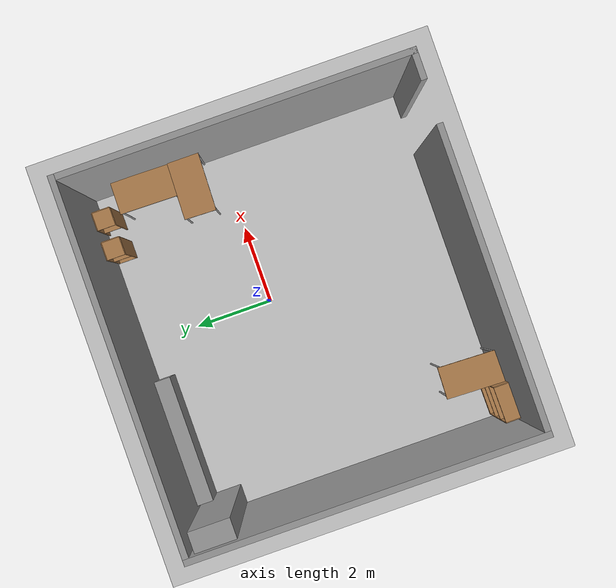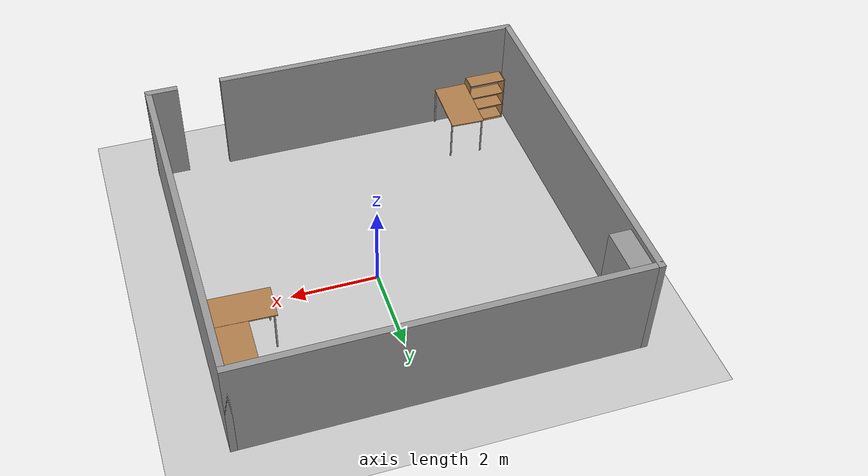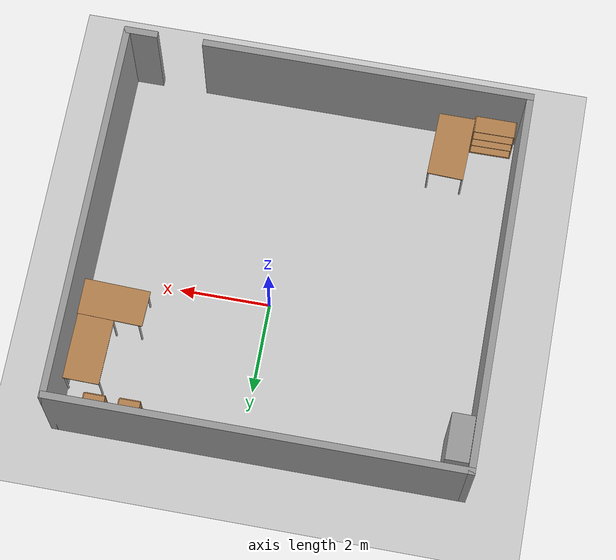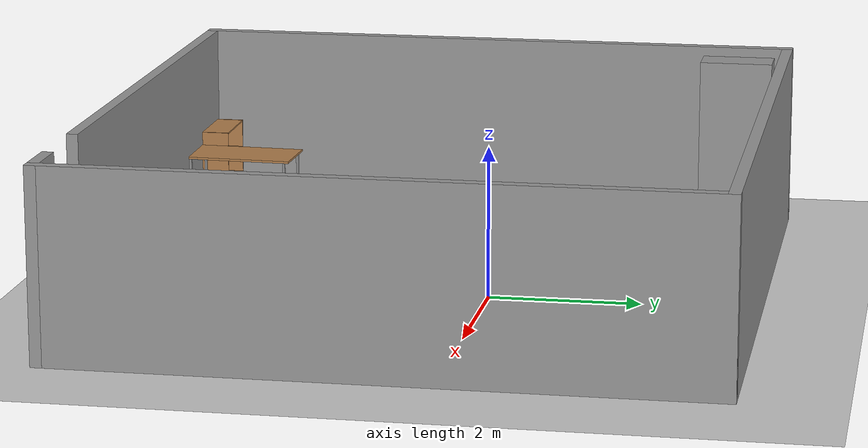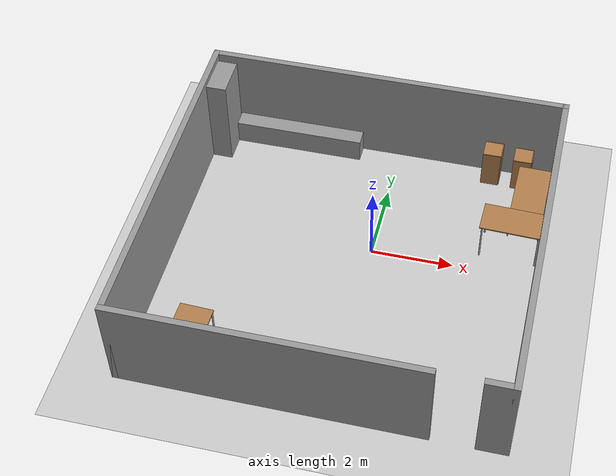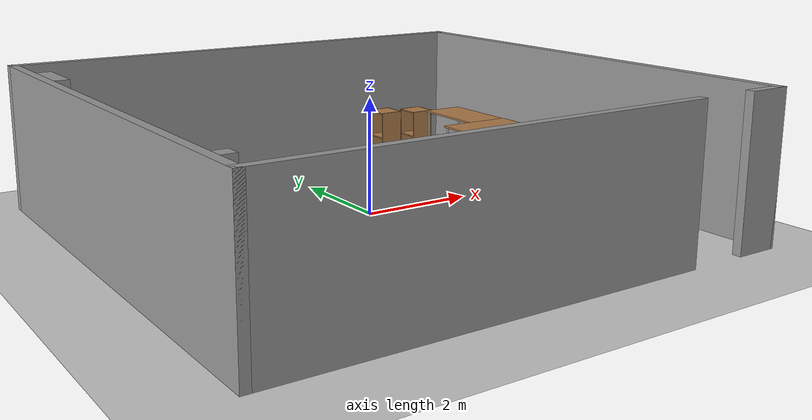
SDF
<sdf version="1.6">
 <world name="default">
  <light name="sun" type="directional">
   <pose>0 0 10 0 -0 0</pose>
   <diffuse>0.8 0.8 0.8 1</diffuse>
   <specular>0.2 0.2 0.2 1</specular>
   <attenuation>
    <range>1000</range>
    <constant>0.9</constant>
    <linear>0.01</linear>
    <quadratic>0.001</quadratic>
   </attenuation>
   <direction>-0.5 0.1 -0.9</direction>
  </light>
  <model name="ground_plane">
   <static>1</static>
   <link name="link">
    <collision name="collision">
     <geometry><plane><normal>0 0 1</normal><size>100 100</size></plane></geometry>
     <surface>
      <contact><collide_bitmask>65535</collide_bitmask></contact>
      <friction><ode><mu>100</mu><mu2>50</mu2></ode></friction>
     </surface>
    </collision>
    <visual name="visual">
     <cast_shadows>0</cast_shadows>
     <geometry><plane><normal>0 0 1</normal><size>100 100</size></plane></geometry>
     <material>
      <script><uri>file://media/materials/scripts/gazebo.material</uri><name>Gazebo/Grey</name></script>
     </material>
    </visual>
   </link>
  </model>
  <gravity>0 0 -9.8</gravity>
  <magnetic_field>6e-06 2.3e-05 -4.2e-05</magnetic_field>
  <atmosphere type="adiabatic"/>
  <physics name="default_physics" default="0" type="ode">
   <max_step_size>0.001</max_step_size>
   <real_time_factor>1</real_time_factor>
   <real_time_update_rate>1000</real_time_update_rate>
  </physics>
  <scene><ambient>0.4 0.4 0.4 1</ambient><background>0.7 0.7 0.7 1</background><shadows>1</shadows></scene>
  <audio><device>default</device></audio>
  <spherical_coordinates>
   <surface_model>EARTH_WGS84</surface_model>
   <latitude_deg>0</latitude_deg>
   <longitude_deg>0</longitude_deg>
   <elevation>0</elevation>
   <heading_deg>0</heading_deg>
  </spherical_coordinates>
  <model name="try2">
   <pose>-0.39709 -0.678514 0 0 -0 0</pose>
   <link name="Wall_13">
    <collision name="Wall_13_Collision">
     <geometry><box><size>8.5 0.15 2.5</size></box></geometry>
     <pose>0 0 1.25 0 -0 0</pose>
    </collision>
    <visual name="Wall_13_Visual">
     <pose>0 0 1.25 0 -0 0</pose>
     <geometry><box><size>8.5 0.15 2.5</size></box></geometry>
     <material>
      <script><uri>file://media/materials/scripts/gazebo.material</uri><name>Gazebo/Grey</name></script>
      <ambient>1 1 1 1</ambient>
     </material>
     <meta><layer>0</layer></meta>
    </visual>
    <pose>-4.425 -0 0 0 -0 -1.5708</pose>
   </link>
   <link name="Wall_14">
    <collision name="Wall_14_Collision">
     <geometry><box><size>7.25 0.15 2.5</size></box></geometry>
     <pose>0 0 1.25 0 -0 0</pose>
    </collision>
    <visual name="Wall_14_Visual">
     <pose>0 0 1.25 0 -0 0</pose>
     <geometry><box><size>7.25 0.15 2.5</size></box></geometry>
     <material>
      <script><uri>file://media/materials/scripts/gazebo.material</uri><name>Gazebo/Grey</name></script>
      <ambient>1 1 1 1</ambient>
     </material>
     <meta><layer>0</layer></meta>
    </visual>
    <pose>-0.875 -4.175 0 0 -0 0</pose>
   </link>
   <link name="Wall_7">
    <collision name="Wall_7_Collision">
     <geometry><box><size>9 0.15 2.5</size></box></geometry>
     <pose>0 0 1.25 0 -0 0</pose>
    </collision>
    <visual name="Wall_7_Visual">
     <pose>0 0 1.25 0 -0 0</pose>
     <geometry><box><size>9 0.15 2.5</size></box></geometry>
     <material>
      <script><uri>file://media/materials/scripts/gazebo.material</uri><name>Gazebo/Grey</name></script>
      <ambient>1 1 1 1</ambient>
     </material>
     <meta><layer>0</layer></meta>
    </visual>
    <pose>0 4.175 0 0 -0 0</pose>
   </link>
   <link name="Wall_8">
    <collision name="Wall_8_Collision">
     <geometry><box><size>8.5 0.15 2.5</size></box></geometry>
     <pose>0 0 1.25 0 -0 0</pose>
    </collision>
    <visual name="Wall_8_Visual">
     <pose>0 0 1.25 0 -0 0</pose>
     <geometry><box><size>8.5 0.15 2.5</size></box></geometry>
     <material>
      <script><uri>file://media/materials/scripts/gazebo.material</uri><name>Gazebo/Grey</name></script>
      <ambient>1 1 1 1</ambient>
     </material>
     <meta><layer>0</layer></meta>
    </visual>
    <pose>4.425 -0 0 0 -0 -1.5708</pose>
   </link>
   <link name="Wall_9">
    <collision name="Wall_9_Collision">
     <geometry><box><size>0.75 0.15 2.5</size></box></geometry>
     <pose>0 0 1.25 0 -0 0</pose>
    </collision>
    <visual name="Wall_9_Visual">
     <pose>0 0 1.25 0 -0 0</pose>
     <geometry><box><size>0.75 0.15 2.5</size></box></geometry>
     <material>
      <script><uri>file://media/materials/scripts/gazebo.material</uri><name>Gazebo/Grey</name></script>
      <ambient>1 1 1 1</ambient>
     </material>
     <meta><layer>0</layer></meta>
    </visual>
    <pose>4.125 -4.175 0 0 -0 3.14159</pose>
   </link>
   <static>1</static>
  </model>
  <model name="bookshelf">
   <static>1</static>
   <link name="link">
    <inertial><mass>1</mass></inertial>
    <collision name="back">
     <pose>0 0.005 0.6 0 -0 0</pose>
     <geometry><box><size>0.9 0.01 1.2</size></box></geometry>
    </collision>
    <visual name="visual1">
     <pose>0 0.005 0.6 0 -0 0</pose>
     <geometry><box><size>0.9 0.01 1.2</size></box></geometry>
     <material>
      <script><uri>file://media/materials/scripts/gazebo.material</uri><name>Gazebo/Wood</name></script>
     </material>
    </visual>
    <collision name="left_side">
     <pose>0.45 -0.195 0.6 0 -0 0</pose>
     <geometry><box><size>0.02 0.4 1.2</size></box></geometry>
    </collision>
    <visual name="visual2">
     <pose>0.45 -0.195 0.6 0 -0 0</pose>
     <geometry><box><size>0.02 0.4 1.2</size></box></geometry>
     <material>
      <script><uri>file://media/materials/scripts/gazebo.material</uri><name>Gazebo/Wood</name></script>
     </material>
    </visual>
    <collision name="right_side">
     <pose>-0.45 -0.195 0.6 0 -0 0</pose>
     <geometry><box><size>0.02 0.4 1.2</size></box></geometry>
    </collision>
    <visual name="visual3">
     <pose>-0.45 -0.195 0.6 0 -0 0</pose>
     <geometry><box><size>0.02 0.4 1.2</size></box></geometry>
     <material>
      <script><uri>file://media/materials/scripts/gazebo.material</uri><name>Gazebo/Wood</name></script>
     </material>
    </visual>
    <collision name="bottom">
     <pose>0 -0.195 0.03 0 -0 0</pose>
     <geometry><box><size>0.88 0.4 0.06</size></box></geometry>
    </collision>
    <visual name="visual4">
     <pose>0 -0.195 0.03 0 -0 0</pose>
     <geometry><box><size>0.88 0.4 0.06</size></box></geometry>
     <material>
      <script><uri>file://media/materials/scripts/gazebo.material</uri><name>Gazebo/Wood</name></script>
     </material>
    </visual>
    <collision name="top">
     <pose>0 -0.195 1.19 0 -0 0</pose>
     <geometry><box><size>0.88 0.4 0.02</size></box></geometry>
    </collision>
    <visual name="visual5">
     <pose>0 -0.195 1.19 0 -0 0</pose>
     <geometry><box><size>0.88 0.4 0.02</size></box></geometry>
     <material>
      <script><uri>file://media/materials/scripts/gazebo.material</uri><name>Gazebo/Wood</name></script>
     </material>
    </visual>
    <collision name="low_shelf">
     <pose>0 -0.195 0.43 0 -0 0</pose>
     <geometry><box><size>0.88 0.4 0.02</size></box></geometry>
    </collision>
    <visual name="visual6">
     <pose>0 -0.195 0.43 0 -0 0</pose>
     <geometry><box><size>0.88 0.4 0.02</size></box></geometry>
     <material>
      <script><uri>file://media/materials/scripts/gazebo.material</uri><name>Gazebo/Wood</name></script>
     </material>
    </visual>
    <collision name="high_shelf">
     <pose>0 -0.195 0.8 0 -0 0</pose>
     <geometry><box><size>0.88 0.4 0.02</size></box></geometry>
    </collision>
    <visual name="visual7">
     <pose>0 -0.195 0.8 0 -0 0</pose>
     <geometry><box><size>0.88 0.4 0.02</size></box></geometry>
     <material>
      <script><uri>file://media/materials/scripts/gazebo.material</uri><name>Gazebo/Wood</name></script>
     </material>
    </visual>
   </link>
   <pose>-4.22007 -4.79984 0 0 0 -3.13332</pose>
  </model>
  <model name="table">
   <static>1</static>
   <link name="link">
    <collision name="surface">
     <pose>0 0 1 0 -0 0</pose>
     <geometry><box><size>1.5 0.8 0.03</size></box></geometry>
     <surface><friction><ode><mu>0.6</mu><mu2>0.6</mu2></ode></friction></surface>
    </collision>
    <visual name="visual1">
     <pose>0 0 1 0 -0 0</pose>
     <geometry><box><size>1.5 0.8 0.03</size></box></geometry>
     <material>
      <script><uri>file://media/materials/scripts/gazebo.material</uri><name>Gazebo/Wood</name></script>
     </material>
    </visual>
    <collision name="front_left_leg">
     <pose>0.68 0.38 0.5 0 -0 0</pose>
     <geometry><cylinder><radius>0.02</radius><length>1</length></cylinder></geometry>
    </collision>
    <visual name="front_left_leg">
     <pose>0.68 0.38 0.5 0 -0 0</pose>
     <geometry><cylinder><radius>0.02</radius><length>1</length></cylinder></geometry>
     <material>
      <script><uri>file://media/materials/scripts/gazebo.material</uri><name>Gazebo/Grey</name></script>
     </material>
    </visual>
    <collision name="front_right_leg">
     <pose>0.68 -0.38 0.5 0 -0 0</pose>
     <geometry><cylinder><radius>0.02</radius><length>1</length></cylinder></geometry>
    </collision>
    <visual name="front_right_leg">
     <pose>0.68 -0.38 0.5 0 -0 0</pose>
     <geometry><cylinder><radius>0.02</radius><length>1</length></cylinder></geometry>
     <material>
      <script><uri>file://media/materials/scripts/gazebo.material</uri><name>Gazebo/Grey</name></script>
     </material>
    </visual>
    <collision name="back_right_leg">
     <pose>-0.68 -0.38 0.5 0 -0 0</pose>
     <geometry><cylinder><radius>0.02</radius><length>1</length></cylinder></geometry>
    </collision>
    <visual name="back_right_leg">
     <pose>-0.68 -0.38 0.5 0 -0 0</pose>
     <geometry><cylinder><radius>0.02</radius><length>1</length></cylinder></geometry>
     <material>
      <script><uri>file://media/materials/scripts/gazebo.material</uri><name>Gazebo/Grey</name></script>
     </material>
    </visual>
    <collision name="back_left_leg">
     <pose>-0.68 0.38 0.5 0 -0 0</pose>
     <geometry><cylinder><radius>0.02</radius><length>1</length></cylinder></geometry>
    </collision>
    <visual name="back_left_leg">
     <pose>-0.68 0.38 0.5 0 -0 0</pose>
     <geometry><cylinder><radius>0.02</radius><length>1</length></cylinder></geometry>
     <material>
      <script><uri>file://media/materials/scripts/gazebo.material</uri><name>Gazebo/Grey</name></script>
     </material>
    </visual>
   </link>
   <pose>-3.33923 -4.06159 0 0 -0 1.53649</pose>
  </model>
  <model name="table_0">
   <static>1</static>
   <link name="link">
    <collision name="surface">
     <pose>0 0 1 0 -0 0</pose>
     <geometry><box><size>1.5 0.8 0.03</size></box></geometry>
     <surface><friction><ode><mu>0.6</mu><mu2>0.6</mu2></ode></friction></surface>
    </collision>
    <visual name="visual1">
     <pose>0 0 1 0 -0 0</pose>
     <geometry><box><size>1.5 0.8 0.03</size></box></geometry>
     <material>
      <script><uri>file://media/materials/scripts/gazebo.material</uri><name>Gazebo/Wood</name></script>
     </material>
    </visual>
    <collision name="front_left_leg">
     <pose>0.68 0.38 0.5 0 -0 0</pose>
     <geometry><cylinder><radius>0.02</radius><length>1</length></cylinder></geometry>
    </collision>
    <visual name="front_left_leg">
     <pose>0.68 0.38 0.5 0 -0 0</pose>
     <geometry><cylinder><radius>0.02</radius><length>1</length></cylinder></geometry>
     <material>
      <script><uri>file://media/materials/scripts/gazebo.material</uri><name>Gazebo/Grey</name></script>
     </material>
    </visual>
    <collision name="front_right_leg">
     <pose>0.68 -0.38 0.5 0 -0 0</pose>
     <geometry><cylinder><radius>0.02</radius><length>1</length></cylinder></geometry>
    </collision>
    <visual name="front_right_leg">
     <pose>0.68 -0.38 0.5 0 -0 0</pose>
     <geometry><cylinder><radius>0.02</radius><length>1</length></cylinder></geometry>
     <material>
      <script><uri>file://media/materials/scripts/gazebo.material</uri><name>Gazebo/Grey</name></script>
     </material>
    </visual>
    <collision name="back_right_leg">
     <pose>-0.68 -0.38 0.5 0 -0 0</pose>
     <geometry><cylinder><radius>0.02</radius><length>1</length></cylinder></geometry>
    </collision>
    <visual name="back_right_leg">
     <pose>-0.68 -0.38 0.5 0 -0 0</pose>
     <geometry><cylinder><radius>0.02</radius><length>1</length></cylinder></geometry>
     <material>
      <script><uri>file://media/materials/scripts/gazebo.material</uri><name>Gazebo/Grey</name></script>
     </material>
    </visual>
    <collision name="back_left_leg">
     <pose>-0.68 0.38 0.5 0 -0 0</pose>
     <geometry><cylinder><radius>0.02</radius><length>1</length></cylinder></geometry>
    </collision>
    <visual name="back_left_leg">
     <pose>-0.68 0.38 0.5 0 -0 0</pose>
     <geometry><cylinder><radius>0.02</radius><length>1</length></cylinder></geometry>
     <material>
      <script><uri>file://media/materials/scripts/gazebo.material</uri><name>Gazebo/Grey</name></script>
     </material>
    </visual>
   </link>
   <pose>3.55038 1.94241 0 0 -0 1.55505</pose>
  </model>
  <model name="cabinet">
   <static>1</static>
   <link name="cabinet_bottom_plate">
    <inertial>
     <pose>0 0 -1 0 -0 0</pose>
     <inertia><ixx>2.05</ixx><ixy>0</ixy><ixz>0</ixz><iyy>2.05</iyy><iyz>0</iyz><izz>2.05</izz></inertia>
     <mass>25</mass>
    </inertial>
    <collision name="cabinet_bottom_plate_geom">
     <pose>0 0 0.01 0 -0 0</pose>
     <geometry><box><size>0.45 0.45 0.02</size></box></geometry>
    </collision>
    <visual name="cabinet_bottom_plate_geom_visual">
     <pose>0 0 0.01 0 -0 0</pose>
     <geometry><box><size>0.45 0.45 0.02</size></box></geometry>
     <material>
      <script><uri>file://media/materials/scripts/gazebo.material</uri><name>Gazebo/Wood</name></script>
     </material>
    </visual>
    <collision name="cabinet_bottom_plate_geom_cabinet_back_plate">
     <pose>0.235 0 0.51 0 -0 0</pose>
     <geometry><box><size>0.02 0.45 1.02</size></box></geometry>
    </collision>
    <visual name="cabinet_bottom_plate_geom_cabinet_back_plate_visual">
     <pose>0.235 0 0.51 0 -0 0</pose>
     <geometry><box><size>0.02 0.45 1.02</size></box></geometry>
     <material>
      <script><uri>file://media/materials/scripts/gazebo.material</uri><name>Gazebo/Wood</name></script>
     </material>
    </visual>
    <collision name="cabinet_bottom_plate_geom_cabinet_left_plate">
     <pose>0 0.235 0.51 0 -0 0</pose>
     <geometry><box><size>0.45 0.02 1.02</size></box></geometry>
    </collision>
    <visual name="cabinet_bottom_plate_geom_cabinet_left_plate_visual">
     <pose>0 0.235 0.51 0 -0 0</pose>
     <geometry><box><size>0.45 0.02 1.02</size></box></geometry>
     <material>
      <script><uri>file://media/materials/scripts/gazebo.material</uri><name>Gazebo/Wood</name></script>
     </material>
    </visual>
    <collision name="cabinet_bottom_plate_geom_cabinet_middle_plate">
     <pose>0 0 0.51 0 -0 0</pose>
     <geometry><box><size>0.45 0.45 0.02</size></box></geometry>
    </collision>
    <visual name="cabinet_bottom_plate_geom_cabinet_middle_plate_visual">
     <pose>0 0 0.51 0 -0 0</pose>
     <geometry><box><size>0.45 0.45 0.02</size></box></geometry>
     <material>
      <script><uri>file://media/materials/scripts/gazebo.material</uri><name>Gazebo/Wood</name></script>
     </material>
    </visual>
    <collision name="cabinet_bottom_plate_geom_cabinet_right_plate">
     <pose>0 -0.235 0.51 0 -0 0</pose>
     <geometry><box><size>0.45 0.02 1.02</size></box></geometry>
    </collision>
    <visual name="cabinet_bottom_plate_geom_cabinet_right_plate_visual">
     <pose>0 -0.235 0.51 0 -0 0</pose>
     <geometry><box><size>0.45 0.02 1.02</size></box></geometry>
     <material>
      <script><uri>file://media/materials/scripts/gazebo.material</uri><name>Gazebo/Wood</name></script>
     </material>
    </visual>
    <collision name="cabinet_bottom_plate_geom_cabinet_top_plate">
     <pose>0 0 1.01 0 -0 0</pose>
     <geometry><box><size>0.45 0.45 0.02</size></box></geometry>
    </collision>
    <visual name="cabinet_bottom_plate_geom_cabinet_top_plate_visual">
     <pose>0 0 1.01 0 -0 0</pose>
     <geometry><box><size>0.45 0.45 0.02</size></box></geometry>
     <material>
      <script><uri>file://media/materials/scripts/gazebo.material</uri><name>Gazebo/Wood</name></script>
     </material>
    </visual>
   </link>
   <pose>2.43761 3.14365 0 0 -0 0</pose>
  </model>
  <model name="cabinet_0">
   <static>1</static>
   <link name="cabinet_bottom_plate">
    <inertial>
     <pose>0 0 -1 0 -0 0</pose>
     <inertia><ixx>2.05</ixx><ixy>0</ixy><ixz>0</ixz><iyy>2.05</iyy><iyz>0</iyz><izz>2.05</izz></inertia>
     <mass>25</mass>
    </inertial>
    <collision name="cabinet_bottom_plate_geom">
     <pose>0 0 0.01 0 -0 0</pose>
     <geometry><box><size>0.45 0.45 0.02</size></box></geometry>
    </collision>
    <visual name="cabinet_bottom_plate_geom_visual">
     <pose>0 0 0.01 0 -0 0</pose>
     <geometry><box><size>0.45 0.45 0.02</size></box></geometry>
     <material>
      <script><uri>file://media/materials/scripts/gazebo.material</uri><name>Gazebo/Wood</name></script>
     </material>
    </visual>
    <collision name="cabinet_bottom_plate_geom_cabinet_back_plate">
     <pose>0.235 0 0.51 0 -0 0</pose>
     <geometry><box><size>0.02 0.45 1.02</size></box></geometry>
    </collision>
    <visual name="cabinet_bottom_plate_geom_cabinet_back_plate_visual">
     <pose>0.235 0 0.51 0 -0 0</pose>
     <geometry><box><size>0.02 0.45 1.02</size></box></geometry>
     <material>
      <script><uri>file://media/materials/scripts/gazebo.material</uri><name>Gazebo/Wood</name></script>
     </material>
    </visual>
    <collision name="cabinet_bottom_plate_geom_cabinet_left_plate">
     <pose>0 0.235 0.51 0 -0 0</pose>
     <geometry><box><size>0.45 0.02 1.02</size></box></geometry>
    </collision>
    <visual name="cabinet_bottom_plate_geom_cabinet_left_plate_visual">
     <pose>0 0.235 0.51 0 -0 0</pose>
     <geometry><box><size>0.45 0.02 1.02</size></box></geometry>
     <material>
      <script><uri>file://media/materials/scripts/gazebo.material</uri><name>Gazebo/Wood</name></script>
     </material>
    </visual>
    <collision name="cabinet_bottom_plate_geom_cabinet_middle_plate">
     <pose>0 0 0.51 0 -0 0</pose>
     <geometry><box><size>0.45 0.45 0.02</size></box></geometry>
    </collision>
    <visual name="cabinet_bottom_plate_geom_cabinet_middle_plate_visual">
     <pose>0 0 0.51 0 -0 0</pose>
     <geometry><box><size>0.45 0.45 0.02</size></box></geometry>
     <material>
      <script><uri>file://media/materials/scripts/gazebo.material</uri><name>Gazebo/Wood</name></script>
     </material>
    </visual>
    <collision name="cabinet_bottom_plate_geom_cabinet_right_plate">
     <pose>0 -0.235 0.51 0 -0 0</pose>
     <geometry><box><size>0.45 0.02 1.02</size></box></geometry>
    </collision>
    <visual name="cabinet_bottom_plate_geom_cabinet_right_plate_visual">
     <pose>0 -0.235 0.51 0 -0 0</pose>
     <geometry><box><size>0.45 0.02 1.02</size></box></geometry>
     <material>
      <script><uri>file://media/materials/scripts/gazebo.material</uri><name>Gazebo/Wood</name></script>
     </material>
    </visual>
    <collision name="cabinet_bottom_plate_geom_cabinet_top_plate">
     <pose>0 0 1.01 0 -0 0</pose>
     <geometry><box><size>0.45 0.45 0.02</size></box></geometry>
    </collision>
    <visual name="cabinet_bottom_plate_geom_cabinet_top_plate_visual">
     <pose>0 0 1.01 0 -0 0</pose>
     <geometry><box><size>0.45 0.45 0.02</size></box></geometry>
     <material>
      <script><uri>file://media/materials/scripts/gazebo.material</uri><name>Gazebo/Wood</name></script>
     </material>
    </visual>
   </link>
   <pose>3.20565 3.14066 -0.05518 0 -0 0</pose>
  </model>
  <model name="unit_box">
   <pose>-4.49682 2.818 1.1847 -1e-06 -0 -8e-06</pose>
   <link name="link">
    <inertial>
     <mass>1</mass>
     <inertia>
      <ixx>0.166667</ixx>
      <ixy>0</ixy>
      <ixz>0</ixz>
      <iyy>0.166667</iyy>
      <iyz>0</iyz>
      <izz>0.166667</izz>
     </inertia>
    </inertial>
    <collision name="collision"><geometry><box><size>0.500006 1 2.3694</size></box></geometry></collision>
    <visual name="visual">
     <geometry><box><size>0.500006 1 2.3694</size></box></geometry>
     <material>
      <script><name>Gazebo/Grey</name><uri>file://media/materials/scripts/gazebo.material</uri></script>
     </material>
    </visual>
   </link>
  </model>
  <model name="table_0_clone">
   <static>1</static>
   <link name="link">
    <collision name="surface">
     <pose>0 0 1 0 -0 0</pose>
     <geometry><box><size>1.5 0.8 0.03</size></box></geometry>
     <surface><friction><ode><mu>0.6</mu><mu2>0.6</mu2></ode></friction></surface>
    </collision>
    <visual name="visual1">
     <pose>0 0 1 0 -0 0</pose>
     <geometry><box><size>1.5 0.8 0.03</size></box></geometry>
     <material>
      <script><uri>file://media/materials/scripts/gazebo.material</uri><name>Gazebo/Wood</name></script>
     </material>
    </visual>
    <collision name="front_left_leg">
     <pose>0.68 0.38 0.5 0 -0 0</pose>
     <geometry><cylinder><radius>0.02</radius><length>1</length></cylinder></geometry>
    </collision>
    <visual name="front_left_leg">
     <pose>0.68 0.38 0.5 0 -0 0</pose>
     <geometry><cylinder><radius>0.02</radius><length>1</length></cylinder></geometry>
     <material>
      <script><uri>file://media/materials/scripts/gazebo.material</uri><name>Gazebo/Grey</name></script>
     </material>
    </visual>
    <collision name="front_right_leg">
     <pose>0.68 -0.38 0.5 0 -0 0</pose>
     <geometry><cylinder><radius>0.02</radius><length>1</length></cylinder></geometry>
    </collision>
    <visual name="front_right_leg">
     <pose>0.68 -0.38 0.5 0 -0 0</pose>
     <geometry><cylinder><radius>0.02</radius><length>1</length></cylinder></geometry>
     <material>
      <script><uri>file://media/materials/scripts/gazebo.material</uri><name>Gazebo/Grey</name></script>
     </material>
    </visual>
    <collision name="back_right_leg">
     <pose>-0.68 -0.38 0.5 0 -0 0</pose>
     <geometry><cylinder><radius>0.02</radius><length>1</length></cylinder></geometry>
    </collision>
    <visual name="back_right_leg">
     <pose>-0.68 -0.38 0.5 0 -0 0</pose>
     <geometry><cylinder><radius>0.02</radius><length>1</length></cylinder></geometry>
     <material>
      <script><uri>file://media/materials/scripts/gazebo.material</uri><name>Gazebo/Grey</name></script>
     </material>
    </visual>
    <collision name="back_left_leg">
     <pose>-0.68 0.38 0.5 0 -0 0</pose>
     <geometry><cylinder><radius>0.02</radius><length>1</length></cylinder></geometry>
    </collision>
    <visual name="back_left_leg">
     <pose>-0.68 0.38 0.5 0 -0 0</pose>
     <geometry><cylinder><radius>0.02</radius><length>1</length></cylinder></geometry>
     <material>
      <script><uri>file://media/materials/scripts/gazebo.material</uri><name>Gazebo/Grey</name></script>
     </material>
    </visual>
   </link>
   <pose>3.26282 0.851122 0 0.003767 5.6e-05 -0.030691</pose>
  </model>
  <model name="unit_box_0">
   <pose>-2.61114 3.19502 0.306423 1e-06 0.000234 0.001313</pose>
   <link name="link">
    <inertial>
     <mass>1</mass>
     <inertia>
      <ixx>0.166667</ixx>
      <ixy>0</ixy>
      <ixz>0</ixz>
      <iyy>0.166667</iyy>
      <iyz>0</iyz>
      <izz>0.166667</izz>
     </inertia>
    </inertial>
    <collision name="collision"><geometry><box><size>3.27022 0.414572 0.613609</size></box></geometry></collision>
    <visual name="visual">
     <geometry><box><size>3.27022 0.414572 0.613609</size></box></geometry>
     <material>
      <script><name>Gazebo/Grey</name><uri>file://media/materials/scripts/gazebo.material</uri></script>
     </material>
    </visual>
   </link>
  </model>
 </world>
</sdf>
